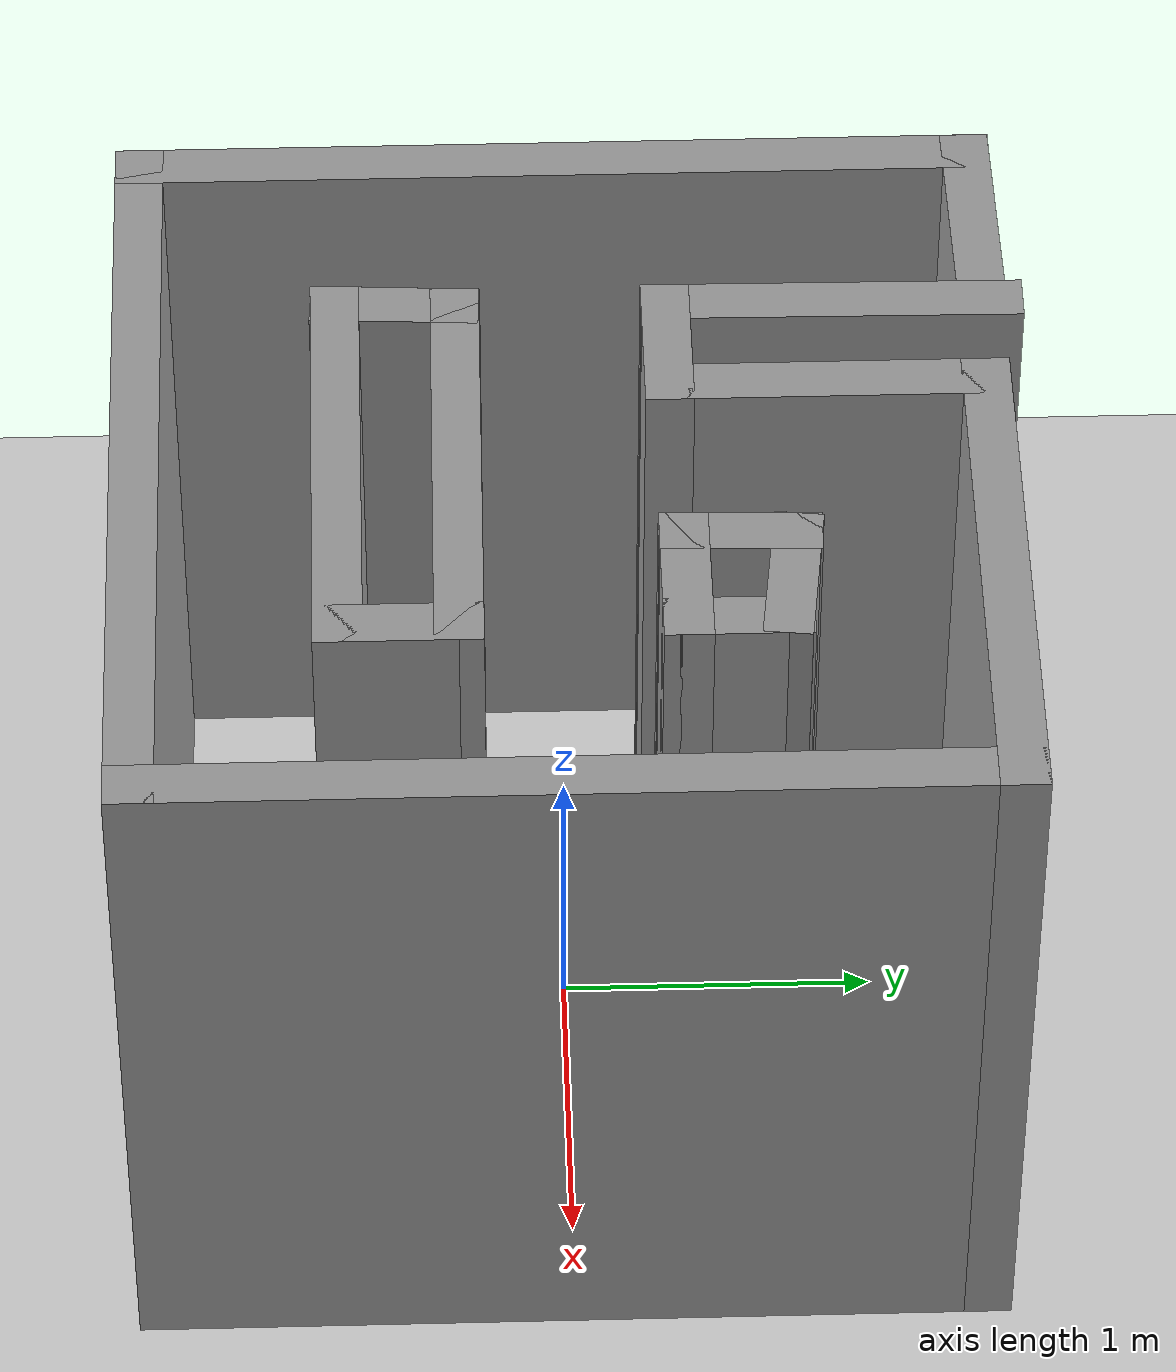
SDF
<?xml version="1.0" ?>

<sdf version="1.5">
  <world name="default">
    <!-- A global light source -->
    <include>
      <uri>model://sun</uri>
    </include>

    <!-- A ground plane -->
    <include>
      <uri>model://ground_plane</uri>
    </include>

    <!-- Our custom model -->
    <include>
      <uri>model://campus_4</uri>
    </include>
  </world>
</sdf>

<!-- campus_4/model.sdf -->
<sdf version='1.6'>
  <model name='campus_4'>
    <pose frame=''>-0.010581 0.030362 0 0 -0 0</pose>
    <link name='Wall_0'>
      <collision name='Wall_0_Collision'>
        <geometry>
          <box>
            <size>2.75 0.15 2.5</size>
          </box>
        </geometry>
        <pose frame=''>0 0 1.25 0 -0 0</pose>
      </collision>
      <visual name='Wall_0_Visual'>
        <pose frame=''>0 0 1.25 0 -0 0</pose>
        <geometry>
          <box>
            <size>2.75 0.15 2.5</size>
          </box>
        </geometry>
        <material>
          <script>
            <uri>file://media/materials/scripts/gazebo.material</uri>
            <name>Gazebo/Grey</name>
          </script>
          <ambient>1 1 1 1</ambient>
        </material>
        <meta>
          <layer>0</layer>
        </meta>
      </visual>
      <pose frame=''>-1.29942 -0.030362 0 0 -0 -1.5708</pose>
    </link>
    <link name='Wall_1'>
      <collision name='Wall_1_Collision'>
        <geometry>
          <box>
            <size>2.75 0.15 2.5</size>
          </box>
        </geometry>
        <pose frame=''>0 0 1.25 0 -0 0</pose>
      </collision>
      <visual name='Wall_1_Visual'>
        <pose frame=''>0 0 1.25 0 -0 0</pose>
        <geometry>
          <box>
            <size>2.75 0.15 2.5</size>
          </box>
        </geometry>
        <material>
          <script>
            <uri>file://media/materials/scripts/gazebo.material</uri>
            <name>Gazebo/Grey</name>
          </script>
          <ambient>1 1 1 1</ambient>
        </material>
        <meta>
          <layer>0</layer>
        </meta>
      </visual>
      <pose frame=''>0.000581 -1.33036 0 0 -0 0</pose>
    </link>
    <link name='Wall_10'>
      <collision name='Wall_10_Collision'>
        <geometry>
          <box>
            <size>0.490147 0.15 2.5</size>
          </box>
        </geometry>
        <pose frame=''>0 0 1.25 0 -0 0</pose>
      </collision>
      <visual name='Wall_10_Visual'>
        <pose frame=''>0 0 1.25 0 -0 0</pose>
        <geometry>
          <box>
            <size>0.490147 0.15 2.5</size>
          </box>
        </geometry>
        <material>
          <script>
            <uri>file://media/materials/scripts/gazebo.material</uri>
            <name>Gazebo/Grey</name>
          </script>
          <ambient>1 1 1 1</ambient>
        </material>
        <meta>
          <layer>0</layer>
        </meta>
      </visual>
      <pose frame=''>0.335581 0.489638 0 0 -0 -1.6002</pose>
    </link>
    <link name='Wall_11'>
      <collision name='Wall_11_Collision'>
        <geometry>
          <box>
            <size>0.5 0.15 2.5</size>
          </box>
        </geometry>
        <pose frame=''>0 0 1.25 0 -0 0</pose>
      </collision>
      <visual name='Wall_11_Visual'>
        <pose frame=''>0 0 1.25 0 -0 0</pose>
        <geometry>
          <box>
            <size>0.5 0.15 2.5</size>
          </box>
        </geometry>
        <material>
          <script>
            <uri>file://media/materials/scripts/gazebo.material</uri>
            <name>Gazebo/Grey</name>
          </script>
          <ambient>1 1 1 1</ambient>
        </material>
        <meta>
          <layer>0</layer>
        </meta>
      </visual>
      <pose frame=''>0.505581 0.319638 0 0 -0 0</pose>
    </link>
    <link name='Wall_12'>
      <collision name='Wall_12_Collision'>
        <geometry>
          <box>
            <size>0.45 0.15 2.5</size>
          </box>
        </geometry>
        <pose frame=''>0 0 1.25 0 -0 0</pose>
      </collision>
      <visual name='Wall_12_Visual'>
        <pose frame=''>0 0 1.25 0 -0 0</pose>
        <geometry>
          <box>
            <size>0.45 0.15 2.5</size>
          </box>
        </geometry>
        <material>
          <script>
            <uri>file://media/materials/scripts/gazebo.material</uri>
            <name>Gazebo/Grey</name>
          </script>
          <ambient>1 1 1 1</ambient>
        </material>
        <meta>
          <layer>0</layer>
        </meta>
      </visual>
      <pose frame=''>0.680581 0.469638 0 0 -0 1.5708</pose>
    </link>
    <link name='Wall_13'>
      <collision name='Wall_13_Collision'>
        <geometry>
          <box>
            <size>0.492345 0.15 2.5</size>
          </box>
        </geometry>
        <pose frame=''>0 0 1.25 0 -0 0</pose>
      </collision>
      <visual name='Wall_13_Visual'>
        <pose frame=''>0 0 1.25 0 -0 0</pose>
        <geometry>
          <box>
            <size>0.492345 0.15 2.5</size>
          </box>
        </geometry>
        <material>
          <script>
            <uri>file://media/materials/scripts/gazebo.material</uri>
            <name>Gazebo/Grey</name>
          </script>
          <ambient>1 1 1 1</ambient>
        </material>
        <meta>
          <layer>0</layer>
        </meta>
      </visual>
      <pose frame=''>0.510581 0.639638 0 0 -0 3.02448</pose>
    </link>
    <link name='Wall_15'>
      <collision name='Wall_15_Collision'>
        <geometry>
          <box>
            <size>0.52054 0.15 2.5</size>
          </box>
        </geometry>
        <pose frame=''>0 0 1.25 0 -0 0</pose>
      </collision>
      <visual name='Wall_15_Visual'>
        <pose frame=''>0 0 1.25 0 -0 0</pose>
        <geometry>
          <box>
            <size>0.52054 0.15 2.5</size>
          </box>
        </geometry>
        <material>
          <script>
            <uri>file://media/materials/scripts/gazebo.material</uri>
            <name>Gazebo/Grey</name>
          </script>
          <ambient>1 1 1 1</ambient>
        </material>
        <meta>
          <layer>0</layer>
        </meta>
      </visual>
      <pose frame=''>-0.659419 -0.535362 0 0 -0 -1.6248</pose>
    </link>
    <link name='Wall_16'>
      <collision name='Wall_16_Collision'>
        <geometry>
          <box>
            <size>1.5 0.15 2.5</size>
          </box>
        </geometry>
        <pose frame=''>0 0 1.25 0 -0 0</pose>
      </collision>
      <visual name='Wall_16_Visual'>
        <pose frame=''>0 0 1.25 0 -0 0</pose>
        <geometry>
          <box>
            <size>1.5 0.15 2.5</size>
          </box>
        </geometry>
        <material>
          <script>
            <uri>file://media/materials/scripts/gazebo.material</uri>
            <name>Gazebo/Grey</name>
          </script>
          <ambient>1 1 1 1</ambient>
        </material>
        <meta>
          <layer>0</layer>
        </meta>
      </visual>
      <pose frame=''>0.005581 -0.720362 0 0 -0 0</pose>
    </link>
    <link name='Wall_17'>
      <collision name='Wall_17_Collision'>
        <geometry>
          <box>
            <size>0.510555 0.15 2.5</size>
          </box>
        </geometry>
        <pose frame=''>0 0 1.25 0 -0 0</pose>
      </collision>
      <visual name='Wall_17_Visual'>
        <pose frame=''>0 0 1.25 0 -0 0</pose>
        <geometry>
          <box>
            <size>0.510555 0.15 2.5</size>
          </box>
        </geometry>
        <material>
          <script>
            <uri>file://media/materials/scripts/gazebo.material</uri>
            <name>Gazebo/Grey</name>
          </script>
          <ambient>1 1 1 1</ambient>
        </material>
        <meta>
          <layer>0</layer>
        </meta>
      </visual>
      <pose frame=''>0.680581 -0.540362 0 0 -0 1.5708</pose>
    </link>
    <link name='Wall_18'>
      <collision name='Wall_18_Collision'>
        <geometry>
          <box>
            <size>1.48004 0.15 2.5</size>
          </box>
        </geometry>
        <pose frame=''>0 0 1.25 0 -0 0</pose>
      </collision>
      <visual name='Wall_18_Visual'>
        <pose frame=''>0 0 1.25 0 -0 0</pose>
        <geometry>
          <box>
            <size>1.48004 0.15 2.5</size>
          </box>
        </geometry>
        <material>
          <script>
            <uri>file://media/materials/scripts/gazebo.material</uri>
            <name>Gazebo/Grey</name>
          </script>
          <ambient>1 1 1 1</ambient>
        </material>
        <meta>
          <layer>0</layer>
        </meta>
      </visual>
      <pose frame=''>0.015581 -0.355362 0 0 -0 3.13407</pose>
    </link>
    <link name='Wall_2'>
      <collision name='Wall_2_Collision'>
        <geometry>
          <box>
            <size>2.75 0.15 2.5</size>
          </box>
        </geometry>
        <pose frame=''>0 0 1.25 0 -0 0</pose>
      </collision>
      <visual name='Wall_2_Visual'>
        <pose frame=''>0 0 1.25 0 -0 0</pose>
        <geometry>
          <box>
            <size>2.75 0.15 2.5</size>
          </box>
        </geometry>
        <material>
          <script>
            <uri>file://media/materials/scripts/gazebo.material</uri>
            <name>Gazebo/Grey</name>
          </script>
          <ambient>1 1 1 1</ambient>
        </material>
        <meta>
          <layer>0</layer>
        </meta>
      </visual>
      <pose frame=''>1.30058 -0.030362 0 0 -0 1.5708</pose>
    </link>
    <link name='Wall_3'>
      <collision name='Wall_3_Collision'>
        <geometry>
          <box>
            <size>1.75 0.15 2.5</size>
          </box>
        </geometry>
        <pose frame=''>0 0 1.25 0 -0 0</pose>
      </collision>
      <visual name='Wall_3_Visual'>
        <pose frame=''>0 0 1.25 0 -0 0</pose>
        <geometry>
          <box>
            <size>1.75 0.15 2.5</size>
          </box>
        </geometry>
        <material>
          <script>
            <uri>file://media/materials/scripts/gazebo.material</uri>
            <name>Gazebo/Grey</name>
          </script>
          <ambient>1 1 1 1</ambient>
        </material>
        <meta>
          <layer>0</layer>
        </meta>
      </visual>
      <pose frame=''>0.500581 1.26964 0 0 -0 3.14159</pose>
    </link>
    <link name='Wall_4'>
      <collision name='Wall_4_Collision'>
        <geometry>
          <box>
            <size>1.12 0.15 2.5</size>
          </box>
        </geometry>
        <pose frame=''>0 0 1.25 0 -0 0</pose>
      </collision>
      <visual name='Wall_4_Visual'>
        <pose frame=''>0 0 1.25 0 -0 0</pose>
        <geometry>
          <box>
            <size>1.12 0.15 2.5</size>
          </box>
        </geometry>
        <material>
          <script>
            <uri>file://media/materials/scripts/gazebo.material</uri>
            <name>Gazebo/Grey</name>
          </script>
          <ambient>1 1 1 1</ambient>
        </material>
        <meta>
          <layer>0</layer>
        </meta>
      </visual>
      <pose frame=''>-0.299419 0.784638 0 0 -0 -1.5708</pose>
    </link>
    <link name='Wall_5'>
      <collision name='Wall_5_Collision'>
        <geometry>
          <box>
            <size>0.5 0.15 2.5</size>
          </box>
        </geometry>
        <pose frame=''>0 0 1.25 0 -0 0</pose>
      </collision>
      <visual name='Wall_5_Visual'>
        <pose frame=''>0 0 1.25 0 -0 0</pose>
        <geometry>
          <box>
            <size>0.5 0.15 2.5</size>
          </box>
        </geometry>
        <material>
          <script>
            <uri>file://media/materials/scripts/gazebo.material</uri>
            <name>Gazebo/Grey</name>
          </script>
          <ambient>1 1 1 1</ambient>
        </material>
        <meta>
          <layer>0</layer>
        </meta>
      </visual>
      <pose frame=''>-0.474419 0.299638 0 0 -0 3.14159</pose>
    </link>
    <link name='Wall_6'>
      <collision name='Wall_6_Collision'>
        <geometry>
          <box>
            <size>1.18005 0.15 2.5</size>
          </box>
        </geometry>
        <pose frame=''>0 0 1.25 0 -0 0</pose>
      </collision>
      <visual name='Wall_6_Visual'>
        <pose frame=''>0 0 1.25 0 -0 0</pose>
        <geometry>
          <box>
            <size>1.18005 0.15 2.5</size>
          </box>
        </geometry>
        <material>
          <script>
            <uri>file://media/materials/scripts/gazebo.material</uri>
            <name>Gazebo/Grey</name>
          </script>
          <ambient>1 1 1 1</ambient>
        </material>
        <meta>
          <layer>0</layer>
        </meta>
      </visual>
      <pose frame=''>-0.644419 0.814638 0 0 -0 1.56109</pose>
    </link>
    <link name='Wall_8'>
      <collision name='Wall_8_Collision'>
        <geometry>
          <box>
            <size>0.790078 0.15 2.5</size>
          </box>
        </geometry>
        <pose frame=''>0 0 1.25 0 -0 0</pose>
      </collision>
      <visual name='Wall_8_Visual'>
        <pose frame=''>0 0 1.25 0 -0 0</pose>
        <geometry>
          <box>
            <size>0.790078 0.15 2.5</size>
          </box>
        </geometry>
        <material>
          <script>
            <uri>file://media/materials/scripts/gazebo.material</uri>
            <name>Gazebo/Grey</name>
          </script>
          <ambient>1 1 1 1</ambient>
        </material>
        <meta>
          <layer>0</layer>
        </meta>
      </visual>
      <pose frame=''>-0.979419 1.27464 0 0 -0 0.015624</pose>
    </link>
    <static>1</static>
  </model>
</sdf>
